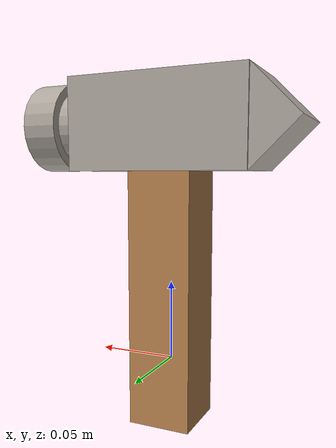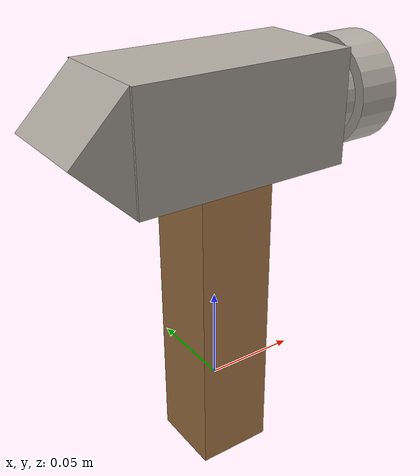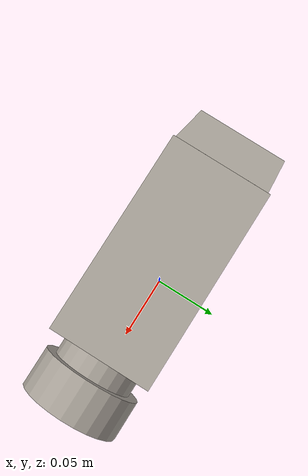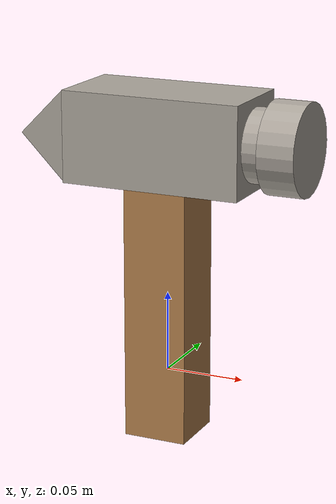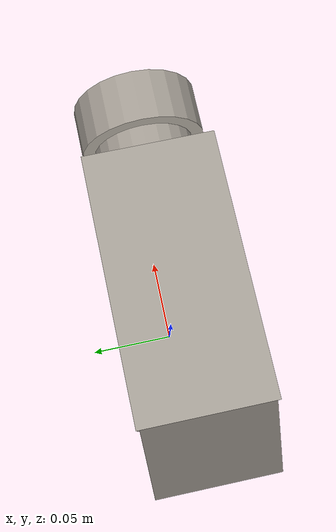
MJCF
<?xml version="1.0" encoding="utf-8"?>
<!-- from https://github.com/vikashplus/mj_envs/tree/master/mj_envs/hand_manipulation_suite/assets -->
<!-- Information about door can be found in this paper: https://arxiv.org/pdf/1709.10087.pdf -->

<mujoco model="toolbox">
  <asset>
    <texture file="../textures/light-wood.png" type="cube" name="light-wood" />
    <texture file="../textures/steel-brushed.png" type="cube" name="steel" />
    <material name="MatSteel" texture="steel" specular="1" shininess="0.3" rgba="0.9 0.9 0.9 1" />
    <material name="MatLightWood" texture="light-wood" texrepeat="3 3" specular="0.4" shininess="0.1" />
  </asset>
  <worldbody>
    <body>
      <body name="object">
        <inertial pos="0 0 0" mass="0.1" diaginertia="0.00052 0.0012 0.001"/>
        <site name="origin" pos="0 0 0" rgba="0 0 0 0" size="0.005"/>

        <geom name="handle"
          pos="0 0 0.04" size="0.02 0.02 0.08" type="box"
          density="1.0"
          group="0" friction="2 2 2"
          rgba="0 0 0 0"
          />

        <geom name="head"
          size="0.056539 0.0282695 0.0282695" pos="0 0 0.14827" type="box"
          density="0.5"
          group="0" friction="1 1 1"
          rgba="0 0 0 0"
          />
        <geom name="neck"
          size="0.0226156 0.0056539" pos="0.0621929 0 0.14827" quat="0.707107 0 0.707107 0" type="cylinder"
          density="0.5"
          group="0" friction="1 1 1"
          rgba="0 0 0 0"
          />
        <geom name="face"
          size="0.0282695 0.0113078" pos="0.0791546 0 0.14827" quat="0.707107 0 0.707107 0" type="cylinder"
          density="0.5"
          group="0" friction="1 1 1"
          rgba="0 0 0 0"
          />
        <geom name="claw"
          size="0.0199922 0.026856 0.0199922" pos="-0.056539 0 0.14827" quat="0.92388 0 0.382683 0" type="box"
          group="0" friction="1 1 1"
          rgba="0 0 0 0"
          />

        <geom name="handle_vis"
          pos="0 0 0.04" size="0.02 0.02 0.08" type="box"
          group="1" contype="0" conaffinity="0"
          material="MatLightWood"
          />

        <geom name="head_vis"
          size="0.056539 0.0282695 0.0282695" pos="0 0 0.14827" type="box"
          group="1" contype="0" conaffinity="0"
          material="MatSteel"
          />
        <geom name="neck_vis"
          size="0.0226156 0.0056539" pos="0.0621929 0 0.14827" quat="0.707107 0 0.707107 0" type="cylinder"
          group="1" contype="0" conaffinity="0"
          material="MatSteel"
          />
        <geom name="face_vis"
          size="0.0282695 0.0113078" pos="0.0791546 0 0.14827" quat="0.707107 0 0.707107 0" type="cylinder"
          group="1" contype="0" conaffinity="0"
          material="MatSteel"
          />
        <geom name="claw_vis"
          size="0.0199922 0.026856 0.0199922" pos="-0.056539 0 0.14827" quat="0.92388 0 0.382683 0" type="box"
          group="1" contype="0" conaffinity="0"
          material="MatSteel"
          />

      </body>
      <site name="bottom_site" pos="0 0 -0.0207" rgba="0 0 0 0" size="0.005"/>
      <site name="top_site" pos="0 0 0.007" rgba="0 0 0 0" size="0.005"/>
      <site name="horizontal_radius_site" pos="0 0 0" rgba="0 0 0 0" size="0.003"/>
    </body>

  </worldbody>
</mujoco>
